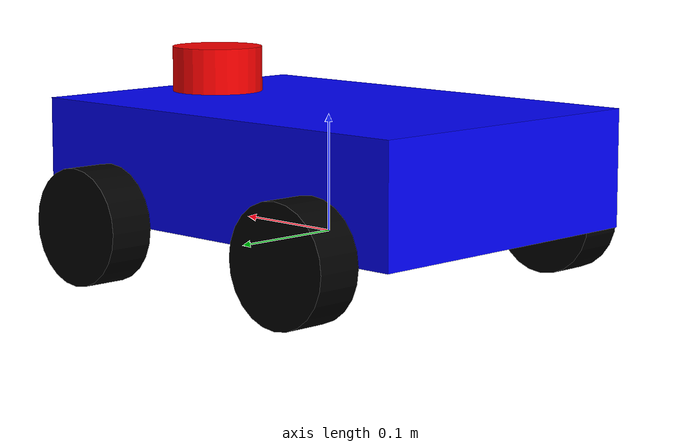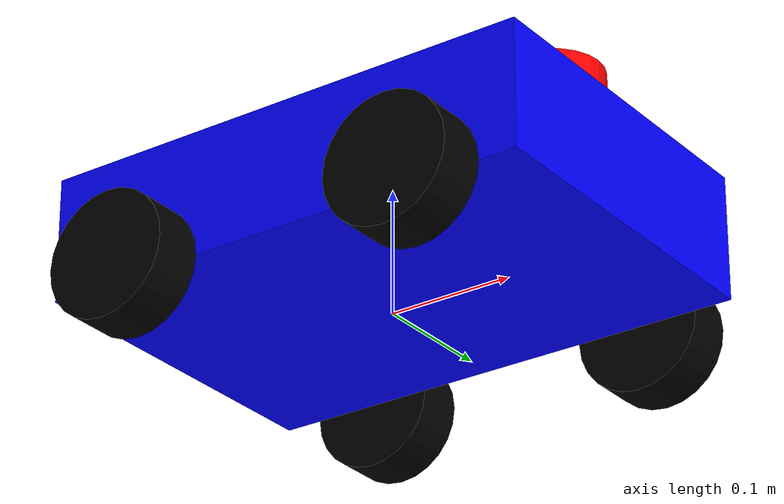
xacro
<?xml version="1.0"?>
<robot name="car" xmlns:xacro="http://www.ros.org/wiki/xacro">

  <!-- Gazebo 插件：关节状态发布（四个轮子都发布） -->
  <gazebo>
    <plugin name="gazebo_ros_joint_state_publisher" filename="libgazebo_ros_joint_state_publisher.so">
      <ros>
        <namespace>/</namespace>
        <remapping>~/out:=joint_states</remapping>
      </ros>
      <update_rate>30</update_rate>
      <joint_name>front_left_wheel_joint</joint_name>
      <joint_name>front_right_wheel_joint</joint_name>
      <joint_name>rear_left_wheel_joint</joint_name>
      <joint_name>rear_right_wheel_joint</joint_name>
    </plugin>
  </gazebo>

  <!-- 差速驱动插件：只驱动前轮！ -->
  <gazebo>
    <plugin name="diff_drive" filename="libgazebo_ros_diff_drive.so">
      <ros>
        <namespace>/</namespace>
        <remapping>cmd_vel:=cmd_vel</remapping>
      </ros>
      <!-- 只驱动前轮 -->
      <left_joint>front_left_wheel_joint</left_joint>
      <right_joint>front_right_wheel_joint</right_joint>
      <!-- 后轮不列入驱动列表，它们会作为从动轮自然旋转 -->
      <wheel_separation>0.34</wheel_separation>
      <wheel_diameter>0.1</wheel_diameter>
      <max_wheel_torque>20</max_wheel_torque>      <!-- 适当增加扭矩 -->
      <max_wheel_acceleration>1.5</max_wheel_acceleration>
      <command_topic>cmd_vel</command_topic>
      <odometry_topic>odom</odometry_topic>
      <odometry_frame>odom</odometry_frame>
      <robot_base_frame>base_footprint</robot_base_frame>
      <publish_odom>true</publish_odom>
      <publish_odom_tf>true</publish_odom_tf>
      <publish_wheel_tf>false</publish_wheel_tf>
    </plugin>
  </gazebo>

  <!-- 材质颜色等保持不变 -->
  <gazebo reference="base_link">
    <material>Gazebo/Blue</material>
  </gazebo>
  <gazebo reference="front_left_wheel_link">
    <material>Gazebo/Black</material>
  </gazebo>
  <gazebo reference="front_right_wheel_link">
    <material>Gazebo/Black</material>
  </gazebo>
  <gazebo reference="rear_left_wheel_link">
    <material>Gazebo/Black</material>
  </gazebo>
  <gazebo reference="rear_right_wheel_link">
    <material>Gazebo/Black</material>
  </gazebo>
  <gazebo reference="laser_link">
    <material>Gazebo/Red</material>
  </gazebo>

  <!-- 为所有轮子添加适当的摩擦系数（避免打滑） -->
  <gazebo reference="front_left_wheel_link">
    <mu1>1.0</mu1>
    <mu2>1.0</mu2>
    <kp>1000000.0</kp>
    <kd>10.0</kd>
  </gazebo>
  <gazebo reference="front_right_wheel_link">
    <mu1>1.0</mu1>
    <mu2>1.0</mu2>
    <kp>1000000.0</kp>
    <kd>10.0</kd>
  </gazebo>
  <gazebo reference="rear_left_wheel_link">
    <mu1>0.8</mu1>
    <mu2>0.8</mu2>
    <kp>1000000.0</kp>
    <kd>10.0</kd>
  </gazebo>
  <gazebo reference="rear_right_wheel_link">
    <mu1>0.8</mu1>
    <mu2>0.8</mu2>
    <kp>1000000.0</kp>
    <kd>10.0</kd>
  </gazebo>

  <!-- 基础坐标系、车身、雷达等（与你的配置一致，略加微调） -->
  <link name="base_footprint"/>
  <joint name="base_footprint_joint" type="fixed">
    <parent link="base_footprint"/>
    <child link="base_link"/>
    <origin xyz="0 0 0.06" rpy="0 0 0"/>
  </joint>

  <link name="base_link">
    <visual>
      <geometry><box size="0.4 0.28 0.1"/></geometry>
      <material name="blue"><color rgba="0 0 1 1"/></material>
    </visual>
    <collision><geometry><box size="0.4 0.28 0.1"/></geometry></collision>
    <inertial>
      <mass value="1.2"/>
      <inertia ixx="0.012" ixy="0" ixz="0" iyy="0.012" iyz="0" izz="0.012"/>
    </inertial>
  </link>

  <!-- 激光雷达 -->
  <link name="laser_link">
    <visual>
      <geometry><cylinder radius="0.04" length="0.04"/></geometry>
      <origin xyz="0 0 0" rpy="0 0 0"/>
      <material name="red"><color rgba="1 0 0 1"/></material>
    </visual>
    <collision><geometry><cylinder radius="0.04" length="0.04"/></geometry></collision>
    <inertial><mass value="0.05"/><inertia ixx="0.0001" ixy="0" ixz="0" iyy="0.0001" iyz="0" izz="0.0001"/></inertial>
  </link>
  <joint name="laser_joint" type="fixed">
    <parent link="base_link"/>
    <child link="laser_link"/>
    <origin xyz="0.14 0 0.07" rpy="0 0 0"/>
  </joint>

  <!-- 前左轮 -->
  <link name="front_left_wheel_link">
    <visual>
      <geometry><cylinder radius="0.05" length="0.04"/></geometry>
      <origin xyz="0 0 0" rpy="1.57079 0 0"/>
      <material name="black"><color rgba="0 0 0 1"/></material>
    </visual>
    <collision><geometry><cylinder radius="0.05" length="0.04"/></geometry><origin xyz="0 0 0" rpy="1.57079 0 0"/></collision>
    <inertial><mass value="0.2"/><inertia ixx="0.0001" ixy="0" ixz="0" iyy="0.0001" iyz="0" izz="0.0001"/></inertial>
  </link>
  <joint name="front_left_wheel_joint" type="continuous">
    <parent link="base_link"/>
    <child link="front_left_wheel_link"/>
    <origin xyz="0.12 0.16 -0.05" rpy="0 0 0"/>
    <axis xyz="0 1 0"/>
  </joint>

  <!-- 前右轮 -->
  <link name="front_right_wheel_link">
    <visual>
      <geometry><cylinder radius="0.05" length="0.04"/></geometry>
      <origin xyz="0 0 0" rpy="1.57079 0 0"/>
      <material name="black"><color rgba="0 0 0 1"/></material>
    </visual>
    <collision><geometry><cylinder radius="0.05" length="0.04"/></geometry><origin xyz="0 0 0" rpy="1.57079 0 0"/></collision>
    <inertial><mass value="0.2"/><inertia ixx="0.0001" ixy="0" ixz="0" iyy="0.0001" iyz="0" izz="0.0001"/></inertial>
  </link>
  <joint name="front_right_wheel_joint" type="continuous">
    <parent link="base_link"/>
    <child link="front_right_wheel_link"/>
    <origin xyz="0.12 -0.16 -0.05" rpy="0 0 0"/>
    <axis xyz="0 1 0"/>
  </joint>

  <!-- 后左轮（无驱动，仅从动） -->
  <link name="rear_left_wheel_link">
    <visual>
      <geometry><cylinder radius="0.05" length="0.04"/></geometry>
      <origin xyz="0 0 0" rpy="1.57079 0 0"/>
      <material name="black"><color rgba="0 0 0 1"/></material>
    </visual>
    <collision><geometry><cylinder radius="0.05" length="0.04"/></geometry><origin xyz="0 0 0" rpy="1.57079 0 0"/></collision>
    <inertial><mass value="0.2"/><inertia ixx="0.0001" ixy="0" ixz="0" iyy="0.0001" iyz="0" izz="0.0001"/></inertial>
  </link>
  <joint name="rear_left_wheel_joint" type="continuous">
    <parent link="base_link"/>
    <child link="rear_left_wheel_link"/>
    <origin xyz="-0.12 0.16 -0.05" rpy="0 0 0"/>
    <axis xyz="0 1 0"/>
  </joint>

  <!-- 后右轮 -->
  <link name="rear_right_wheel_link">
    <visual>
      <geometry><cylinder radius="0.05" length="0.04"/></geometry>
      <origin xyz="0 0 0" rpy="1.57079 0 0"/>
      <material name="black"><color rgba="0 0 0 1"/></material>
    </visual>
    <collision><geometry><cylinder radius="0.05" length="0.04"/></geometry><origin xyz="0 0 0" rpy="1.57079 0 0"/></collision>
    <inertial><mass value="0.2"/><inertia ixx="0.0001" ixy="0" ixz="0" iyy="0.0001" iyz="0" izz="0.0001"/></inertial>
  </link>
  <joint name="rear_right_wheel_joint" type="continuous">
    <parent link="base_link"/>
    <child link="rear_right_wheel_link"/>
    <origin xyz="-0.12 -0.16 -0.05" rpy="0 0 0"/>
    <axis xyz="0 1 0"/>
  </joint>

  <!-- 雷达传感器插件（不变） -->
  <gazebo reference="laser_link">
    <sensor name="laser" type="ray">
      <always_on>true</always_on>
      <visualize>true</visualize>
      <update_rate>20</update_rate>
      <pose>0 0 0 0 0 0</pose>
      <ray>
        <scan>
          <horizontal><samples>360</samples><resolution>1</resolution><min_angle>-3.14159</min_angle><max_angle>3.14159</max_angle></horizontal>
        </scan>
        <range><min>0.1</min><max>8.0</max><resolution>0.01</resolution></range>
        <noise><type>gaussian</type><mean>0.0</mean><stddev>0.01</stddev></noise>
      </ray>
      <plugin name="gazebo_ros_laser" filename="libgazebo_ros_ray_sensor.so">
        <ros><remapping>~/out:=scan</remapping></ros>
        <output_type>sensor_msgs/LaserScan</output_type>
        <frame_name>laser_link</frame_name>
      </plugin>
    </sensor>
  </gazebo>

</robot>
